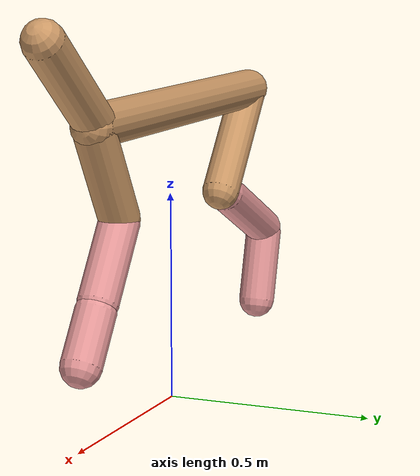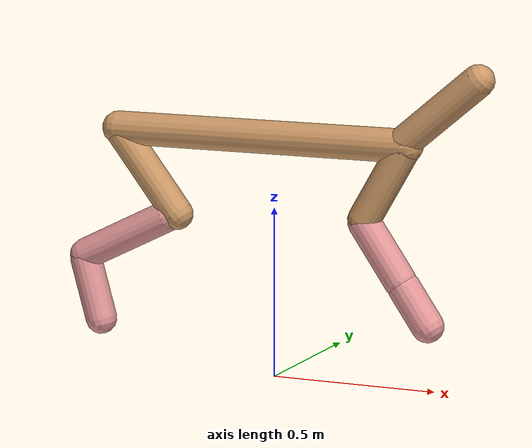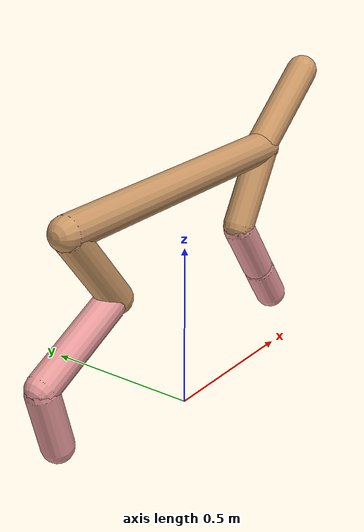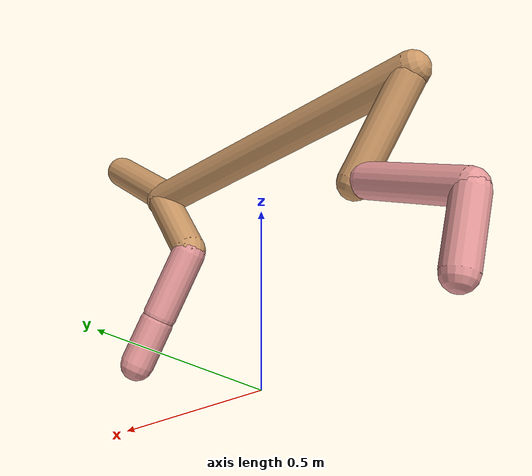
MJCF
<mujoco model="cheetah">
  <compiler angle="radian" coordinate="local" inertiafromgeom="true" settotalmass="14" />
  <default>
    <joint armature=".1" damping=".01" limited="true" solimplimit="0 .8 .03" solreflimit=".02 1" stiffness="8" />
    <geom conaffinity="0" condim="3" contype="1" friction="0.8 .1 .1" rgba="0.8 0.6 .4 1" solimp="0.0 0.8 0.01" solref="0.02 1" />
    <motor ctrllimited="true" ctrlrange="-1 1" />
  </default>
  <size nstack="300000" nuser_geom="1" />
  <option gravity="0 0 -9.81" timestep="0.01" />
  <worldbody>
    <body name="torso" pos="0.0 0.0 0.7053185602676029">
      <joint armature="0" axis="1 0 0" damping="0" limited="false" name="ignorex" pos="0 0 0" stiffness="0" type="slide" />
      <joint armature="0" axis="0 0 1" damping="0" limited="false" name="ignorez" pos="0 0 0" stiffness="0" type="slide" />
      <joint armature="0" axis="0 1 0" damping="0" limited="false" name="ignorey" pos="0 0 0" stiffness="0" type="hinge" />
      <geom fromto="-0.5 0.0 0.0 0.40720984397930465 0.0 0.0" name="torso" size="0.049407330961803" type="capsule" />
      <geom axisangle="0 1 0 .87" name="head" pos="0.5072098439793046 0.0 0.1" size="0.04756695824812151 0.15" type="capsule" />

      <body name="bthigh" pos="-.5 0 0">
        <joint axis="0 1 0" damping="6" name="bthigh" pos="0 0 0" range="-.52 1.05" stiffness="240" type="hinge" />
        <geom axisangle="0 1 0 -3.8" name="bthigh" pos="0.10039847762455156 0.0 -0.13051802091191703" size="0.046772345206329724 0.14565355189729018" type="capsule" />
        <body name="bshin" pos="0.16079695524910312 0.0 -0.25103604182383404">
          <joint axis="0 1 0" damping="4.5" name="bshin" pos="0 0 0" range="-.785 .785" stiffness="180" type="hinge" />
          <geom axisangle="0 1 0 -2.03" name="bshin" pos="-0.14060471164241303 0.0 -0.07030235582120652" rgba="0.9 0.6 0.6 1" size="0.046772345206329724 0.15067608816961053" type="capsule" />
          <body name="bfoot" pos="-0.28120942328482607 0.0 -0.14060471164241303">
            <joint axis="0 1 0" damping="3" name="bfoot" pos="0 0 0" range="-.4 .785" stiffness="120" type="hinge" />
            <geom axisangle="0 1 0 -.27" name="bfoot" pos="0.030125185179397978 0.0 -0.0974047654133868" rgba="0.9 0.6 0.6 1" size="0.046772345206329724 0.09442368191962261" type="capsule" />
            <inertial mass="10" />
          </body>
        </body>
      </body>
      <body name="fthigh" pos="0.4072098439793046 0.0 0.0">
        <joint axis="0 1 0" damping="4.5" name="fthigh" pos="0 0 0" range="-1.5 0.8" stiffness="180" type="hinge" />
        <geom axisangle="0 1 0 .52" name="fthigh" pos="-0.0657608516372318 0.0 -0.11273288852096879" size="0.0476891548589876 0.12458683840103928" type="capsule" />
        <body name="fshin" pos="-0.1315217032744636 0.0 -0.22546577704193757">
          <joint axis="0 1 0" damping="3" name="fshin" pos="0 0 0" range="-1.2 1.1" stiffness="120" type="hinge" />
          <geom axisangle="0 1 0 -.6" name="fshin" pos="0.06107415320089695 0.0 -0.08456421212431885" rgba="0.9 0.6 0.6 1" size="0.0476891548589876 0.09929477346248243" type="capsule" />
          <body name="ffoot" pos="0.1221483064017939 0.0 -0.1691284242486377">
            <joint axis="0 1 0" damping="1.5" name="ffoot" pos="0 0 0" range="-3.1 -0.3" stiffness="60" type="hinge" />
            <geom axisangle="0 1 0 -.6" name="ffoot" pos="0.042605536314955145 0.0 -0.06627527871215246" rgba="0.9 0.6 0.6 1" size="0.0476891548589876 0.0655720202110733" type="capsule" />
            <inertial mass="10" />
          </body>
        </body>
      </body>
    </body>
  </worldbody>
  <actuator>
    <motor gear="120" joint="bthigh" name="bthigh" />
    <motor gear="90" joint="bshin" name="bshin" />
    <motor gear="60" joint="bfoot" name="bfoot" />
    <motor gear="120" joint="fthigh" name="fthigh" />
    <motor gear="60" joint="fshin" name="fshin" />
    <motor gear="30" joint="ffoot" name="ffoot" />
  </actuator>
</mujoco>
